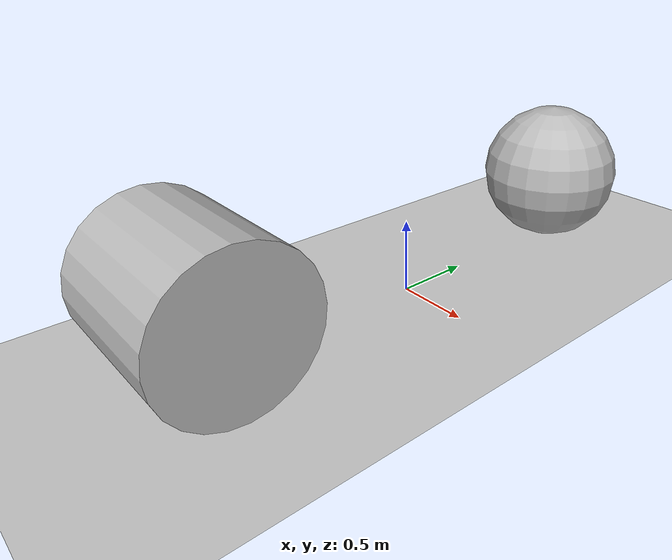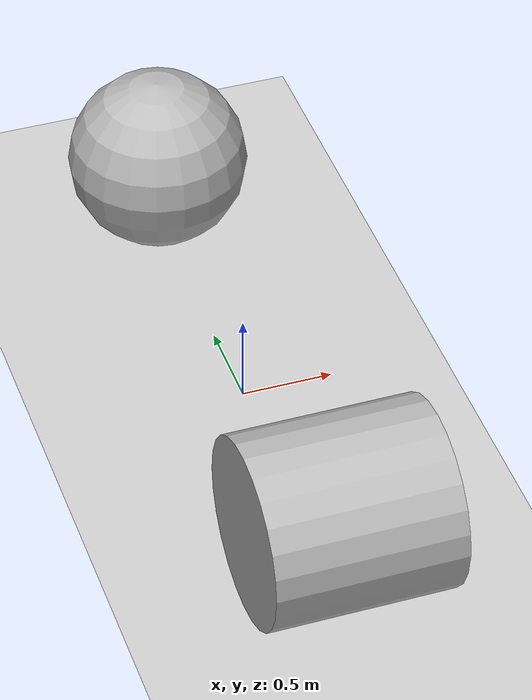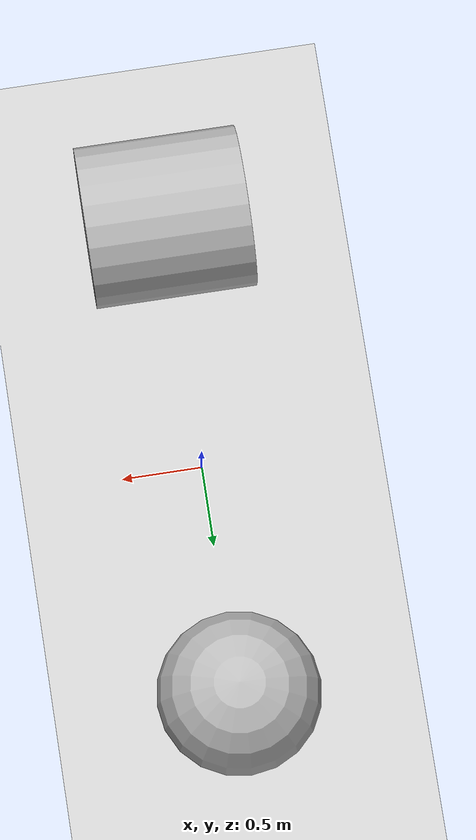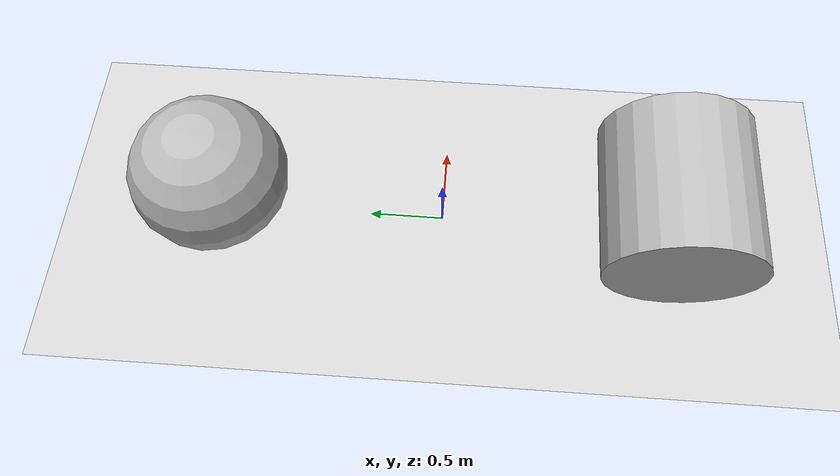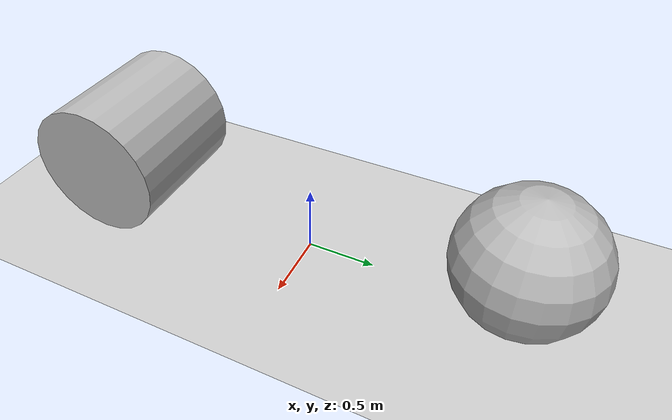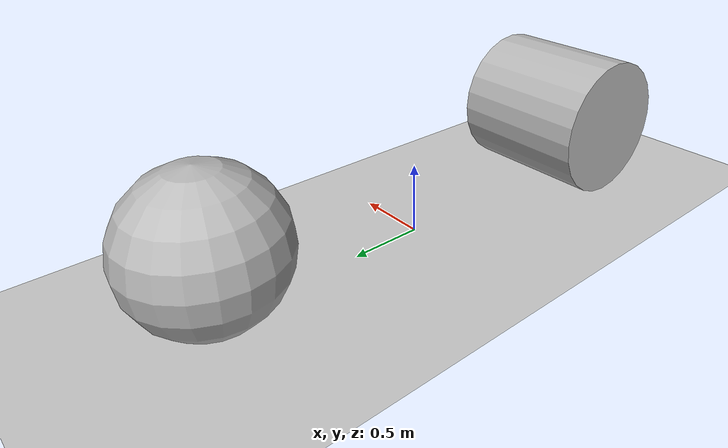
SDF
<?xml version="1.0" ?>
<sdf version="1.5">
  <world name="default">
    <include>
      <uri>model://ground_plane</uri>
    </include>
    <include>
      <uri>model://sun</uri>
    </include>
    <model name="sphere">
      <pose>0 1.5 0.5 0 0 0</pose>
      <link name="link">
        <collision name="collision">
          <geometry>
            <sphere>
              <radius>0.5</radius>
            </sphere>
          </geometry>
        </collision>
        <visual name="visual">
          <geometry>
            <sphere>
              <radius>0.5</radius>
            </sphere>
          </geometry>
          <material>
            <script>Gazebo/WoodPallet</script>
          </material>
        </visual>
      </link>
    </model>
    <model name="cylinder">
      <pose>0 -1.5 0.5 0 1.5707 0</pose>
      <link name="link">
        <collision name="collision">
          <geometry>
            <cylinder>
              <radius>0.5</radius>
              <length>1.0</length>
            </cylinder>
          </geometry>
        </collision>
        <visual name="visual">
          <geometry>
            <cylinder>
              <radius>0.5</radius>
              <length>1.0</length>
            </cylinder>
          </geometry>
          <material>
            <script>Gazebo/WoodPallet</script>
          </material>
        </visual>
      </link>
    </model>
  </world>
</sdf>
